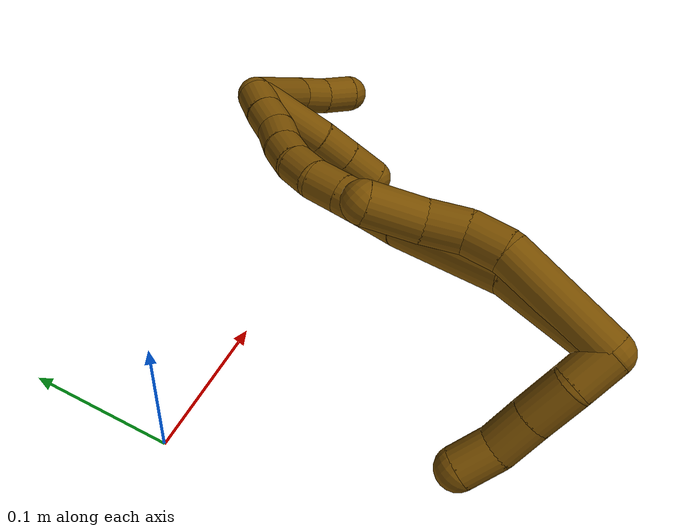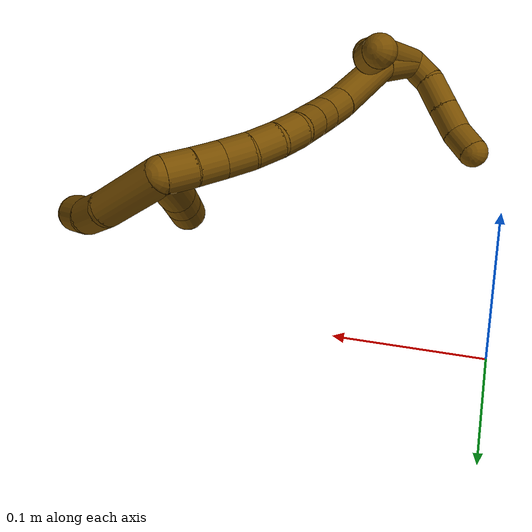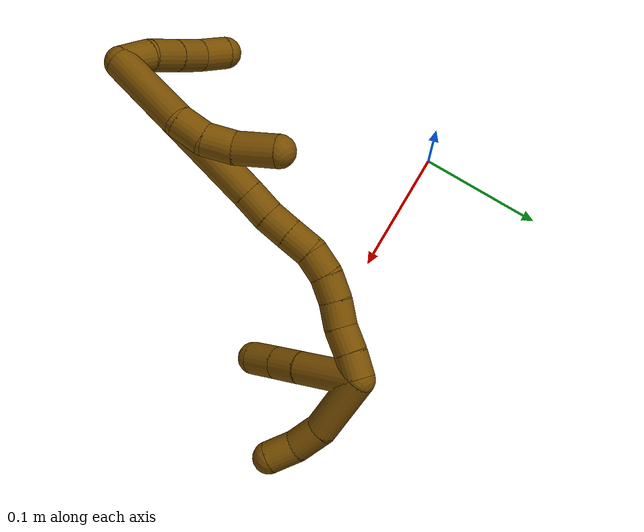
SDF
<sdf version="1.7">
 <world name="default">
  <model name="12">
   <static>0</static>
   <link name="12">
    <collision name="collision-cylinder-e_1_2_8">
     <pose>0.000129 -0.000382 0.035132 0.010885 0.003674 2e-05</pose>
     <geometry><cylinder><radius>0.0125</radius><length>0.070269</length></cylinder></geometry>
     <surface>
      <friction><ode><mu>1.16</mu><mu2>1.16</mu2><slip1>0</slip1><slip2>0</slip2></ode></friction>
      <contact><ode><kp>1e+06</kp><kd>1</kd><max_vel>0</max_vel><min_depth>0.001</min_depth></ode></contact>
     </surface>
    </collision>
    <visual name="visual-cylinder-e_1_2_8">
     <pose>0.000129 -0.000382 0.035132 0.010885 0.003674 2e-05</pose>
     <geometry><cylinder><radius>0.0125</radius><length>0.070269</length></cylinder></geometry>
     <material><ambient>0.466667 0.301961 0 1</ambient></material>
    </visual>
    <collision name="collision-cylinder-e_2_8_9">
     <pose>-0.002492 0.001087 0.081201 -0.167715 -0.243013 0.020527</pose>
     <geometry><cylinder><radius>0.0125</radius><length>0.022857</length></cylinder></geometry>
     <surface>
      <friction><ode><mu>1.16</mu><mu2>1.16</mu2><slip1>0</slip1><slip2>0</slip2></ode></friction>
      <contact><ode><kp>1e+06</kp><kd>1</kd><max_vel>0</max_vel><min_depth>0.001</min_depth></ode></contact>
     </surface>
    </collision>
    <visual name="visual-cylinder-e_2_8_9">
     <pose>-0.002492 0.001087 0.081201 -0.167715 -0.243013 0.020527</pose>
     <geometry><cylinder><radius>0.0125</radius><length>0.022857</length></cylinder></geometry>
     <material><ambient>0.466667 0.301961 0 1</ambient></material>
    </visual>
    <collision name="collision-cylinder-e_3_9_10">
     <pose>-0.011541 0.003537 0.10217 -0.059594 -0.559878 0.017137</pose>
     <geometry><cylinder><radius>0.0125</radius><length>0.023722</length></cylinder></geometry>
     <surface>
      <friction><ode><mu>1.16</mu><mu2>1.16</mu2><slip1>0</slip1><slip2>0</slip2></ode></friction>
      <contact><ode><kp>1e+06</kp><kd>1</kd><max_vel>0</max_vel><min_depth>0.001</min_depth></ode></contact>
     </surface>
    </collision>
    <visual name="visual-cylinder-e_3_9_10">
     <pose>-0.011541 0.003537 0.10217 -0.059594 -0.559878 0.017137</pose>
     <geometry><cylinder><radius>0.0125</radius><length>0.023722</length></cylinder></geometry>
     <material><ambient>0.466667 0.301961 0 1</ambient></material>
    </visual>
    <collision name="collision-cylinder-e_4_10_6">
     <pose>-0.027153 0.000492 0.125422 0.268978 -0.596596 -0.083158</pose>
     <geometry><cylinder><radius>0.0125</radius><length>0.033152</length></cylinder></geometry>
     <surface>
      <friction><ode><mu>1.16</mu><mu2>1.16</mu2><slip1>0</slip1><slip2>0</slip2></ode></friction>
      <contact><ode><kp>1e+06</kp><kd>1</kd><max_vel>0</max_vel><min_depth>0.001</min_depth></ode></contact>
     </surface>
    </collision>
    <visual name="visual-cylinder-e_4_10_6">
     <pose>-0.027153 0.000492 0.125422 0.268978 -0.596596 -0.083158</pose>
     <geometry><cylinder><radius>0.0125</radius><length>0.033152</length></cylinder></geometry>
     <material><ambient>0.466667 0.301961 0 1</ambient></material>
    </visual>
    <collision name="collision-cylinder-e_1_2_11">
     <pose>-0.011382 0.0047 0.000824 -1.39719 -1.17379 1.01882</pose>
     <geometry><cylinder><radius>0.0125</radius><length>0.024684</length></cylinder></geometry>
     <surface>
      <friction><ode><mu>1.16</mu><mu2>1.16</mu2><slip1>0</slip1><slip2>0</slip2></ode></friction>
      <contact><ode><kp>1e+06</kp><kd>1</kd><max_vel>0</max_vel><min_depth>0.001</min_depth></ode></contact>
     </surface>
    </collision>
    <visual name="visual-cylinder-e_1_2_11">
     <pose>-0.011382 0.0047 0.000824 -1.39719 -1.17379 1.01882</pose>
     <geometry><cylinder><radius>0.0125</radius><length>0.024684</length></cylinder></geometry>
     <material><ambient>0.466667 0.301961 0 1</ambient></material>
    </visual>
    <collision name="collision-cylinder-e_2_11_12">
     <pose>-0.033394 0.017668 0.002661 -1.44899 -0.906159 0.813709</pose>
     <geometry><cylinder><radius>0.0125</radius><length>0.027009</length></cylinder></geometry>
     <surface>
      <friction><ode><mu>1.16</mu><mu2>1.16</mu2><slip1>0</slip1><slip2>0</slip2></ode></friction>
      <contact><ode><kp>1e+06</kp><kd>1</kd><max_vel>0</max_vel><min_depth>0.001</min_depth></ode></contact>
     </surface>
    </collision>
    <visual name="visual-cylinder-e_2_11_12">
     <pose>-0.033394 0.017668 0.002661 -1.44899 -0.906159 0.813709</pose>
     <geometry><cylinder><radius>0.0125</radius><length>0.027009</length></cylinder></geometry>
     <material><ambient>0.466667 0.301961 0 1</ambient></material>
    </visual>
    <collision name="collision-cylinder-e_3_12_13">
     <pose>-0.054017 0.033603 0.004366 -1.48067 -0.914422 0.844916</pose>
     <geometry><cylinder><radius>0.0125</radius><length>0.02523</length></cylinder></geometry>
     <surface>
      <friction><ode><mu>1.16</mu><mu2>1.16</mu2><slip1>0</slip1><slip2>0</slip2></ode></friction>
      <contact><ode><kp>1e+06</kp><kd>1</kd><max_vel>0</max_vel><min_depth>0.001</min_depth></ode></contact>
     </surface>
    </collision>
    <visual name="visual-cylinder-e_3_12_13">
     <pose>-0.054017 0.033603 0.004366 -1.48067 -0.914422 0.844916</pose>
     <geometry><cylinder><radius>0.0125</radius><length>0.02523</length></cylinder></geometry>
     <material><ambient>0.466667 0.301961 0 1</ambient></material>
    </visual>
    <collision name="collision-cylinder-e_4_13_5">
     <pose>-0.074297 0.045629 0.007946 -0.985714 -1.1005 0.636523</pose>
     <geometry><cylinder><radius>0.0125</radius><length>0.023078</length></cylinder></geometry>
     <surface>
      <friction><ode><mu>1.16</mu><mu2>1.16</mu2><slip1>0</slip1><slip2>0</slip2></ode></friction>
      <contact><ode><kp>1e+06</kp><kd>1</kd><max_vel>0</max_vel><min_depth>0.001</min_depth></ode></contact>
     </surface>
    </collision>
    <visual name="visual-cylinder-e_4_13_5">
     <pose>-0.074297 0.045629 0.007946 -0.985714 -1.1005 0.636523</pose>
     <geometry><cylinder><radius>0.0125</radius><length>0.023078</length></cylinder></geometry>
     <material><ambient>0.466667 0.301961 0 1</ambient></material>
    </visual>
    <collision name="collision-cylinder-e_1_2_14">
     <pose>-0.001697 0.005284 0.031787 -0.16473 -0.052628 0.004346</pose>
     <geometry><cylinder><radius>0.0125</radius><length>0.064535</length></cylinder></geometry>
     <surface>
      <friction><ode><mu>1.16</mu><mu2>1.16</mu2><slip1>0</slip1><slip2>0</slip2></ode></friction>
      <contact><ode><kp>1e+06</kp><kd>1</kd><max_vel>0</max_vel><min_depth>0.001</min_depth></ode></contact>
     </surface>
    </collision>
    <visual name="visual-cylinder-e_1_2_14">
     <pose>-0.001697 0.005284 0.031787 -0.16473 -0.052628 0.004346</pose>
     <geometry><cylinder><radius>0.0125</radius><length>0.064535</length></cylinder></geometry>
     <material><ambient>0.466667 0.301961 0 1</ambient></material>
    </visual>
    <collision name="collision-cylinder-e_2_14_15">
     <pose>-0.008644 0.026595 0.095032 -0.471176 -0.147599 0.035491</pose>
     <geometry><cylinder><radius>0.0125</radius><length>0.071388</length></cylinder></geometry>
     <surface>
      <friction><ode><mu>1.16</mu><mu2>1.16</mu2><slip1>0</slip1><slip2>0</slip2></ode></friction>
      <contact><ode><kp>1e+06</kp><kd>1</kd><max_vel>0</max_vel><min_depth>0.001</min_depth></ode></contact>
     </surface>
    </collision>
    <visual name="visual-cylinder-e_2_14_15">
     <pose>-0.008644 0.026595 0.095032 -0.471176 -0.147599 0.035491</pose>
     <geometry><cylinder><radius>0.0125</radius><length>0.071388</length></cylinder></geometry>
     <material><ambient>0.466667 0.301961 0 1</ambient></material>
    </visual>
    <collision name="collision-cylinder-e_3_15_16">
     <pose>-0.014921 0.047146 0.136962 -0.407868 -0.089842 0.018592</pose>
     <geometry><cylinder><radius>0.0125</radius><length>0.022906</length></cylinder></geometry>
     <surface>
      <friction><ode><mu>1.16</mu><mu2>1.16</mu2><slip1>0</slip1><slip2>0</slip2></ode></friction>
      <contact><ode><kp>1e+06</kp><kd>1</kd><max_vel>0</max_vel><min_depth>0.001</min_depth></ode></contact>
     </surface>
    </collision>
    <visual name="visual-cylinder-e_3_15_16">
     <pose>-0.014921 0.047146 0.136962 -0.407868 -0.089842 0.018592</pose>
     <geometry><cylinder><radius>0.0125</radius><length>0.022906</length></cylinder></geometry>
     <material><ambient>0.466667 0.301961 0 1</ambient></material>
    </visual>
    <collision name="collision-cylinder-e_4_16_17">
     <pose>-0.017766 0.054288 0.157036 -0.266155 -0.180608 0.024242</pose>
     <geometry><cylinder><radius>0.0125</radius><length>0.020236</length></cylinder></geometry>
     <surface>
      <friction><ode><mu>1.16</mu><mu2>1.16</mu2><slip1>0</slip1><slip2>0</slip2></ode></friction>
      <contact><ode><kp>1e+06</kp><kd>1</kd><max_vel>0</max_vel><min_depth>0.001</min_depth></ode></contact>
     </surface>
    </collision>
    <visual name="visual-cylinder-e_4_16_17">
     <pose>-0.017766 0.054288 0.157036 -0.266155 -0.180608 0.024242</pose>
     <geometry><cylinder><radius>0.0125</radius><length>0.020236</length></cylinder></geometry>
     <material><ambient>0.466667 0.301961 0 1</ambient></material>
    </visual>
    <collision name="collision-cylinder-e_5_17_18">
     <pose>-0.021592 0.059512 0.17656 -0.256795 -0.193324 0.025036</pose>
     <geometry><cylinder><radius>0.0125</radius><length>0.020905</length></cylinder></geometry>
     <surface>
      <friction><ode><mu>1.16</mu><mu2>1.16</mu2><slip1>0</slip1><slip2>0</slip2></ode></friction>
      <contact><ode><kp>1e+06</kp><kd>1</kd><max_vel>0</max_vel><min_depth>0.001</min_depth></ode></contact>
     </surface>
    </collision>
    <visual name="visual-cylinder-e_5_17_18">
     <pose>-0.021592 0.059512 0.17656 -0.256795 -0.193324 0.025036</pose>
     <geometry><cylinder><radius>0.0125</radius><length>0.020905</length></cylinder></geometry>
     <material><ambient>0.466667 0.301961 0 1</ambient></material>
    </visual>
    <collision name="collision-cylinder-e_6_18_19">
     <pose>-0.02301 0.066288 0.19556 -0.430674 0.058956 -0.012899</pose>
     <geometry><cylinder><radius>0.0125</radius><length>0.020017</length></cylinder></geometry>
     <surface>
      <friction><ode><mu>1.16</mu><mu2>1.16</mu2><slip1>0</slip1><slip2>0</slip2></ode></friction>
      <contact><ode><kp>1e+06</kp><kd>1</kd><max_vel>0</max_vel><min_depth>0.001</min_depth></ode></contact>
     </surface>
    </collision>
    <visual name="visual-cylinder-e_6_18_19">
     <pose>-0.02301 0.066288 0.19556 -0.430674 0.058956 -0.012899</pose>
     <geometry><cylinder><radius>0.0125</radius><length>0.020017</length></cylinder></geometry>
     <material><ambient>0.466667 0.301961 0 1</ambient></material>
    </visual>
    <collision name="collision-cylinder-e_7_19_20">
     <pose>-0.019728 0.075376 0.212924 -0.535577 0.272474 -0.075192</pose>
     <geometry><cylinder><radius>0.0125</radius><length>0.020006</length></cylinder></geometry>
     <surface>
      <friction><ode><mu>1.16</mu><mu2>1.16</mu2><slip1>0</slip1><slip2>0</slip2></ode></friction>
      <contact><ode><kp>1e+06</kp><kd>1</kd><max_vel>0</max_vel><min_depth>0.001</min_depth></ode></contact>
     </surface>
    </collision>
    <visual name="visual-cylinder-e_7_19_20">
     <pose>-0.019728 0.075376 0.212924 -0.535577 0.272474 -0.075192</pose>
     <geometry><cylinder><radius>0.0125</radius><length>0.020006</length></cylinder></geometry>
     <material><ambient>0.466667 0.301961 0 1</ambient></material>
    </visual>
    <collision name="collision-cylinder-e_8_20_21">
     <pose>-0.012858 0.085117 0.228911 -0.559617 0.430884 -0.125599</pose>
     <geometry><cylinder><radius>0.0125</radius><length>0.020006</length></cylinder></geometry>
     <surface>
      <friction><ode><mu>1.16</mu><mu2>1.16</mu2><slip1>0</slip1><slip2>0</slip2></ode></friction>
      <contact><ode><kp>1e+06</kp><kd>1</kd><max_vel>0</max_vel><min_depth>0.001</min_depth></ode></contact>
     </surface>
    </collision>
    <visual name="visual-cylinder-e_8_20_21">
     <pose>-0.012858 0.085117 0.228911 -0.559617 0.430884 -0.125599</pose>
     <geometry><cylinder><radius>0.0125</radius><length>0.020006</length></cylinder></geometry>
     <material><ambient>0.466667 0.301961 0 1</ambient></material>
    </visual>
    <collision name="collision-cylinder-e_9_21_22">
     <pose>-0.00585 0.093717 0.245431 -0.404538 0.286963 -0.059238</pose>
     <geometry><cylinder><radius>0.0125</radius><length>0.020001</length></cylinder></geometry>
     <surface>
      <friction><ode><mu>1.16</mu><mu2>1.16</mu2><slip1>0</slip1><slip2>0</slip2></ode></friction>
      <contact><ode><kp>1e+06</kp><kd>1</kd><max_vel>0</max_vel><min_depth>0.001</min_depth></ode></contact>
     </surface>
    </collision>
    <visual name="visual-cylinder-e_9_21_22">
     <pose>-0.00585 0.093717 0.245431 -0.404538 0.286963 -0.059238</pose>
     <geometry><cylinder><radius>0.0125</radius><length>0.020001</length></cylinder></geometry>
     <material><ambient>0.466667 0.301961 0 1</ambient></material>
    </visual>
    <collision name="collision-cylinder-e_10_22_1">
     <pose>0.000582 0.101368 0.262734 -0.428401 0.368397 -0.081015</pose>
     <geometry><cylinder><radius>0.0125</radius><length>0.020001</length></cylinder></geometry>
     <surface>
      <friction><ode><mu>1.16</mu><mu2>1.16</mu2><slip1>0</slip1><slip2>0</slip2></ode></friction>
      <contact><ode><kp>1e+06</kp><kd>1</kd><max_vel>0</max_vel><min_depth>0.001</min_depth></ode></contact>
     </surface>
    </collision>
    <visual name="visual-cylinder-e_10_22_1">
     <pose>0.000582 0.101368 0.262734 -0.428401 0.368397 -0.081015</pose>
     <geometry><cylinder><radius>0.0125</radius><length>0.020001</length></cylinder></geometry>
     <material><ambient>0.466667 0.301961 0 1</ambient></material>
    </visual>
    <collision name="collision-cylinder-e_1_1_23">
     <pose>0.022064 0.124395 0.270555 -1.60551 0.750783 -0.774771</pose>
     <geometry><cylinder><radius>0.0125</radius><length>0.05242</length></cylinder></geometry>
     <surface>
      <friction><ode><mu>1.16</mu><mu2>1.16</mu2><slip1>0</slip1><slip2>0</slip2></ode></friction>
      <contact><ode><kp>1e+06</kp><kd>1</kd><max_vel>0</max_vel><min_depth>0.001</min_depth></ode></contact>
     </surface>
    </collision>
    <visual name="visual-cylinder-e_1_1_23">
     <pose>0.022064 0.124395 0.270555 -1.60551 0.750783 -0.774771</pose>
     <geometry><cylinder><radius>0.0125</radius><length>0.05242</length></cylinder></geometry>
     <material><ambient>0.466667 0.301961 0 1</ambient></material>
    </visual>
    <collision name="collision-cylinder-e_2_23_24">
     <pose>0.049485 0.150746 0.266671 -1.99137 0.880029 -1.25634</pose>
     <geometry><cylinder><radius>0.0125</radius><length>0.024755</length></cylinder></geometry>
     <surface>
      <friction><ode><mu>1.16</mu><mu2>1.16</mu2><slip1>0</slip1><slip2>0</slip2></ode></friction>
      <contact><ode><kp>1e+06</kp><kd>1</kd><max_vel>0</max_vel><min_depth>0.001</min_depth></ode></contact>
     </surface>
    </collision>
    <visual name="visual-cylinder-e_2_23_24">
     <pose>0.049485 0.150746 0.266671 -1.99137 0.880029 -1.25634</pose>
     <geometry><cylinder><radius>0.0125</radius><length>0.024755</length></cylinder></geometry>
     <material><ambient>0.466667 0.301961 0 1</ambient></material>
    </visual>
    <collision name="collision-cylinder-e_3_24_4">
     <pose>0.068848 0.161739 0.25905 -2.43009 1.03661 -1.98673</pose>
     <geometry><cylinder><radius>0.0125</radius><length>0.022825</length></cylinder></geometry>
     <surface>
      <friction><ode><mu>1.16</mu><mu2>1.16</mu2><slip1>0</slip1><slip2>0</slip2></ode></friction>
      <contact><ode><kp>1e+06</kp><kd>1</kd><max_vel>0</max_vel><min_depth>0.001</min_depth></ode></contact>
     </surface>
    </collision>
    <visual name="visual-cylinder-e_3_24_4">
     <pose>0.068848 0.161739 0.25905 -2.43009 1.03661 -1.98673</pose>
     <geometry><cylinder><radius>0.0125</radius><length>0.022825</length></cylinder></geometry>
     <material><ambient>0.466667 0.301961 0 1</ambient></material>
    </visual>
    <collision name="collision-cylinder-e_1_1_25">
     <pose>0.013746 0.11656 0.24956 -2.66016 0.372998 -1.31069</pose>
     <geometry><cylinder><radius>0.0125</radius><length>0.052486</length></cylinder></geometry>
     <surface>
      <friction><ode><mu>1.16</mu><mu2>1.16</mu2><slip1>0</slip1><slip2>0</slip2></ode></friction>
      <contact><ode><kp>1e+06</kp><kd>1</kd><max_vel>0</max_vel><min_depth>0.001</min_depth></ode></contact>
     </surface>
    </collision>
    <visual name="visual-cylinder-e_1_1_25">
     <pose>0.013746 0.11656 0.24956 -2.66016 0.372998 -1.31069</pose>
     <geometry><cylinder><radius>0.0125</radius><length>0.052486</length></cylinder></geometry>
     <material><ambient>0.466667 0.301961 0 1</ambient></material>
    </visual>
    <collision name="collision-cylinder-e_2_25_26">
     <pose>0.027035 0.133381 0.218556 -2.60919 0.330866 -1.09884</pose>
     <geometry><cylinder><radius>0.0125</radius><length>0.022933</length></cylinder></geometry>
     <surface>
      <friction><ode><mu>1.16</mu><mu2>1.16</mu2><slip1>0</slip1><slip2>0</slip2></ode></friction>
      <contact><ode><kp>1e+06</kp><kd>1</kd><max_vel>0</max_vel><min_depth>0.001</min_depth></ode></contact>
     </surface>
    </collision>
    <visual name="visual-cylinder-e_2_25_26">
     <pose>0.027035 0.133381 0.218556 -2.60919 0.330866 -1.09884</pose>
     <geometry><cylinder><radius>0.0125</radius><length>0.022933</length></cylinder></geometry>
     <material><ambient>0.466667 0.301961 0 1</ambient></material>
    </visual>
    <collision name="collision-cylinder-e_3_26_3">
     <pose>0.034737 0.144889 0.199253 -2.59913 0.329582 -1.07792</pose>
     <geometry><cylinder><radius>0.0125</radius><length>0.024581</length></cylinder></geometry>
     <surface>
      <friction><ode><mu>1.16</mu><mu2>1.16</mu2><slip1>0</slip1><slip2>0</slip2></ode></friction>
      <contact><ode><kp>1e+06</kp><kd>1</kd><max_vel>0</max_vel><min_depth>0.001</min_depth></ode></contact>
     </surface>
    </collision>
    <visual name="visual-cylinder-e_3_26_3">
     <pose>0.034737 0.144889 0.199253 -2.59913 0.329582 -1.07792</pose>
     <geometry><cylinder><radius>0.0125</radius><length>0.024581</length></cylinder></geometry>
     <material><ambient>0.466667 0.301961 0 1</ambient></material>
    </visual>
    <collision name="collision-sphere-3">
     <pose>0.038715 0.150892 0.189293 0 -0 0</pose>
     <geometry><sphere><radius>0.0125</radius></sphere></geometry>
     <surface>
      <friction><ode><mu>1.16</mu><mu2>1.16</mu2><slip1>0</slip1><slip2>0</slip2></ode></friction>
      <contact><ode><kp>1e+06</kp><kd>1</kd><max_vel>0</max_vel><min_depth>0.001</min_depth></ode></contact>
     </surface>
    </collision>
    <visual name="visual-sphere-3">
     <pose>0.038715 0.150892 0.189293 0 -0 0</pose>
     <geometry><sphere><radius>0.0125</radius></sphere></geometry>
     <material><ambient>0.466667 0.301961 0 1</ambient></material>
    </visual>
    <collision name="collision-sphere-26">
     <pose>0.03076 0.138885 0.209212 0 -0 0</pose>
     <geometry><sphere><radius>0.0125</radius></sphere></geometry>
     <surface>
      <friction><ode><mu>1.16</mu><mu2>1.16</mu2><slip1>0</slip1><slip2>0</slip2></ode></friction>
      <contact><ode><kp>1e+06</kp><kd>1</kd><max_vel>0</max_vel><min_depth>0.001</min_depth></ode></contact>
     </surface>
    </collision>
    <visual name="visual-sphere-26">
     <pose>0.03076 0.138885 0.209212 0 -0 0</pose>
     <geometry><sphere><radius>0.0125</radius></sphere></geometry>
     <material><ambient>0.466667 0.301961 0 1</ambient></material>
    </visual>
    <collision name="collision-sphere-25">
     <pose>0.02331 0.127876 0.2279 0 -0 0</pose>
     <geometry><sphere><radius>0.0125</radius></sphere></geometry>
     <surface>
      <friction><ode><mu>1.16</mu><mu2>1.16</mu2><slip1>0</slip1><slip2>0</slip2></ode></friction>
      <contact><ode><kp>1e+06</kp><kd>1</kd><max_vel>0</max_vel><min_depth>0.001</min_depth></ode></contact>
     </surface>
    </collision>
    <visual name="visual-sphere-25">
     <pose>0.02331 0.127876 0.2279 0 -0 0</pose>
     <geometry><sphere><radius>0.0125</radius></sphere></geometry>
     <material><ambient>0.466667 0.301961 0 1</ambient></material>
    </visual>
    <collision name="collision-sphere-4">
     <pose>0.07867 0.165533 0.254649 0 -0 0</pose>
     <geometry><sphere><radius>0.0125</radius></sphere></geometry>
     <surface>
      <friction><ode><mu>1.16</mu><mu2>1.16</mu2><slip1>0</slip1><slip2>0</slip2></ode></friction>
      <contact><ode><kp>1e+06</kp><kd>1</kd><max_vel>0</max_vel><min_depth>0.001</min_depth></ode></contact>
     </surface>
    </collision>
    <visual name="visual-sphere-4">
     <pose>0.07867 0.165533 0.254649 0 -0 0</pose>
     <geometry><sphere><radius>0.0125</radius></sphere></geometry>
     <material><ambient>0.466667 0.301961 0 1</ambient></material>
    </visual>
    <collision name="collision-sphere-24">
     <pose>0.059025 0.157945 0.263451 0 -0 0</pose>
     <geometry><sphere><radius>0.0125</radius></sphere></geometry>
     <surface>
      <friction><ode><mu>1.16</mu><mu2>1.16</mu2><slip1>0</slip1><slip2>0</slip2></ode></friction>
      <contact><ode><kp>1e+06</kp><kd>1</kd><max_vel>0</max_vel><min_depth>0.001</min_depth></ode></contact>
     </surface>
    </collision>
    <visual name="visual-sphere-24">
     <pose>0.059025 0.157945 0.263451 0 -0 0</pose>
     <geometry><sphere><radius>0.0125</radius></sphere></geometry>
     <material><ambient>0.466667 0.301961 0 1</ambient></material>
    </visual>
    <collision name="collision-sphere-23">
     <pose>0.039945 0.143547 0.26989 0 -0 0</pose>
     <geometry><sphere><radius>0.0125</radius></sphere></geometry>
     <surface>
      <friction><ode><mu>1.16</mu><mu2>1.16</mu2><slip1>0</slip1><slip2>0</slip2></ode></friction>
      <contact><ode><kp>1e+06</kp><kd>1</kd><max_vel>0</max_vel><min_depth>0.001</min_depth></ode></contact>
     </surface>
    </collision>
    <visual name="visual-sphere-23">
     <pose>0.039945 0.143547 0.26989 0 -0 0</pose>
     <geometry><sphere><radius>0.0125</radius></sphere></geometry>
     <material><ambient>0.466667 0.301961 0 1</ambient></material>
    </visual>
    <collision name="collision-sphere-1">
     <pose>0.004183 0.105243 0.271221 0 -0 0</pose>
     <geometry><sphere><radius>0.0125</radius></sphere></geometry>
     <surface>
      <friction><ode><mu>1.16</mu><mu2>1.16</mu2><slip1>0</slip1><slip2>0</slip2></ode></friction>
      <contact><ode><kp>1e+06</kp><kd>1</kd><max_vel>0</max_vel><min_depth>0.001</min_depth></ode></contact>
     </surface>
    </collision>
    <visual name="visual-sphere-1">
     <pose>0.004183 0.105243 0.271221 0 -0 0</pose>
     <geometry><sphere><radius>0.0125</radius></sphere></geometry>
     <material><ambient>0.466667 0.301961 0 1</ambient></material>
    </visual>
    <collision name="collision-sphere-22">
     <pose>-0.003019 0.097492 0.254248 0 -0 0</pose>
     <geometry><sphere><radius>0.0125</radius></sphere></geometry>
     <surface>
      <friction><ode><mu>1.16</mu><mu2>1.16</mu2><slip1>0</slip1><slip2>0</slip2></ode></friction>
      <contact><ode><kp>1e+06</kp><kd>1</kd><max_vel>0</max_vel><min_depth>0.001</min_depth></ode></contact>
     </surface>
    </collision>
    <visual name="visual-sphere-22">
     <pose>-0.003019 0.097492 0.254248 0 -0 0</pose>
     <geometry><sphere><radius>0.0125</radius></sphere></geometry>
     <material><ambient>0.466667 0.301961 0 1</ambient></material>
    </visual>
    <collision name="collision-sphere-21">
     <pose>-0.00868 0.089942 0.236614 0 -0 0</pose>
     <geometry><sphere><radius>0.0125</radius></sphere></geometry>
     <surface>
      <friction><ode><mu>1.16</mu><mu2>1.16</mu2><slip1>0</slip1><slip2>0</slip2></ode></friction>
      <contact><ode><kp>1e+06</kp><kd>1</kd><max_vel>0</max_vel><min_depth>0.001</min_depth></ode></contact>
     </surface>
    </collision>
    <visual name="visual-sphere-21">
     <pose>-0.00868 0.089942 0.236614 0 -0 0</pose>
     <geometry><sphere><radius>0.0125</radius></sphere></geometry>
     <material><ambient>0.466667 0.301961 0 1</ambient></material>
    </visual>
    <collision name="collision-sphere-11">
     <pose>-0.022764 0.009401 0.001649 0 -0 0</pose>
     <geometry><sphere><radius>0.0125</radius></sphere></geometry>
     <surface>
      <friction><ode><mu>1.16</mu><mu2>1.16</mu2><slip1>0</slip1><slip2>0</slip2></ode></friction>
      <contact><ode><kp>1e+06</kp><kd>1</kd><max_vel>0</max_vel><min_depth>0.001</min_depth></ode></contact>
     </surface>
    </collision>
    <visual name="visual-sphere-11">
     <pose>-0.022764 0.009401 0.001649 0 -0 0</pose>
     <geometry><sphere><radius>0.0125</radius></sphere></geometry>
     <material><ambient>0.466667 0.301961 0 1</ambient></material>
    </visual>
    <collision name="collision-sphere-6">
     <pose>-0.036466 -0.003152 0.138642 0 -0 0</pose>
     <geometry><sphere><radius>0.0125</radius></sphere></geometry>
     <surface>
      <friction><ode><mu>1.16</mu><mu2>1.16</mu2><slip1>0</slip1><slip2>0</slip2></ode></friction>
      <contact><ode><kp>1e+06</kp><kd>1</kd><max_vel>0</max_vel><min_depth>0.001</min_depth></ode></contact>
     </surface>
    </collision>
    <visual name="visual-sphere-6">
     <pose>-0.036466 -0.003152 0.138642 0 -0 0</pose>
     <geometry><sphere><radius>0.0125</radius></sphere></geometry>
     <material><ambient>0.466667 0.301961 0 1</ambient></material>
    </visual>
    <collision name="collision-sphere-10">
     <pose>-0.01784 0.004136 0.112203 0 -0 0</pose>
     <geometry><sphere><radius>0.0125</radius></sphere></geometry>
     <surface>
      <friction><ode><mu>1.16</mu><mu2>1.16</mu2><slip1>0</slip1><slip2>0</slip2></ode></friction>
      <contact><ode><kp>1e+06</kp><kd>1</kd><max_vel>0</max_vel><min_depth>0.001</min_depth></ode></contact>
     </surface>
    </collision>
    <visual name="visual-sphere-10">
     <pose>-0.01784 0.004136 0.112203 0 -0 0</pose>
     <geometry><sphere><radius>0.0125</radius></sphere></geometry>
     <material><ambient>0.466667 0.301961 0 1</ambient></material>
    </visual>
    <collision name="collision-sphere-9">
     <pose>-0.005242 0.002938 0.092138 0 -0 0</pose>
     <geometry><sphere><radius>0.0125</radius></sphere></geometry>
     <surface>
      <friction><ode><mu>1.16</mu><mu2>1.16</mu2><slip1>0</slip1><slip2>0</slip2></ode></friction>
      <contact><ode><kp>1e+06</kp><kd>1</kd><max_vel>0</max_vel><min_depth>0.001</min_depth></ode></contact>
     </surface>
    </collision>
    <visual name="visual-sphere-9">
     <pose>-0.005242 0.002938 0.092138 0 -0 0</pose>
     <geometry><sphere><radius>0.0125</radius></sphere></geometry>
     <material><ambient>0.466667 0.301961 0 1</ambient></material>
    </visual>
    <collision name="collision-sphere-2">
     <geometry><sphere><radius>0.0125</radius></sphere></geometry>
     <surface>
      <friction><ode><mu>1.16</mu><mu2>1.16</mu2><slip1>0</slip1><slip2>0</slip2></ode></friction>
      <contact><ode><kp>1e+06</kp><kd>1</kd><max_vel>0</max_vel><min_depth>0.001</min_depth></ode></contact>
     </surface>
    </collision>
    <visual name="visual-sphere-2">
     <geometry><sphere><radius>0.0125</radius></sphere></geometry>
     <material><ambient>0.466667 0.301961 0 1</ambient></material>
    </visual>
    <collision name="collision-sphere-19">
     <pose>-0.02242 0.070459 0.204639 0 -0 0</pose>
     <geometry><sphere><radius>0.0125</radius></sphere></geometry>
     <surface>
      <friction><ode><mu>1.16</mu><mu2>1.16</mu2><slip1>0</slip1><slip2>0</slip2></ode></friction>
      <contact><ode><kp>1e+06</kp><kd>1</kd><max_vel>0</max_vel><min_depth>0.001</min_depth></ode></contact>
     </surface>
    </collision>
    <visual name="visual-sphere-19">
     <pose>-0.02242 0.070459 0.204639 0 -0 0</pose>
     <geometry><sphere><radius>0.0125</radius></sphere></geometry>
     <material><ambient>0.466667 0.301961 0 1</ambient></material>
    </visual>
    <collision name="collision-sphere-8">
     <pose>0.000258 -0.000765 0.070264 0 -0 0</pose>
     <geometry><sphere><radius>0.0125</radius></sphere></geometry>
     <surface>
      <friction><ode><mu>1.16</mu><mu2>1.16</mu2><slip1>0</slip1><slip2>0</slip2></ode></friction>
      <contact><ode><kp>1e+06</kp><kd>1</kd><max_vel>0</max_vel><min_depth>0.001</min_depth></ode></contact>
     </surface>
    </collision>
    <visual name="visual-sphere-8">
     <pose>0.000258 -0.000765 0.070264 0 -0 0</pose>
     <geometry><sphere><radius>0.0125</radius></sphere></geometry>
     <material><ambient>0.466667 0.301961 0 1</ambient></material>
    </visual>
    <collision name="collision-sphere-12">
     <pose>-0.044024 0.025936 0.003673 0 -0 0</pose>
     <geometry><sphere><radius>0.0125</radius></sphere></geometry>
     <surface>
      <friction><ode><mu>1.16</mu><mu2>1.16</mu2><slip1>0</slip1><slip2>0</slip2></ode></friction>
      <contact><ode><kp>1e+06</kp><kd>1</kd><max_vel>0</max_vel><min_depth>0.001</min_depth></ode></contact>
     </surface>
    </collision>
    <visual name="visual-sphere-12">
     <pose>-0.044024 0.025936 0.003673 0 -0 0</pose>
     <geometry><sphere><radius>0.0125</radius></sphere></geometry>
     <material><ambient>0.466667 0.301961 0 1</ambient></material>
    </visual>
    <collision name="collision-sphere-13">
     <pose>-0.064011 0.04127 0.005058 0 -0 0</pose>
     <geometry><sphere><radius>0.0125</radius></sphere></geometry>
     <surface>
      <friction><ode><mu>1.16</mu><mu2>1.16</mu2><slip1>0</slip1><slip2>0</slip2></ode></friction>
      <contact><ode><kp>1e+06</kp><kd>1</kd><max_vel>0</max_vel><min_depth>0.001</min_depth></ode></contact>
     </surface>
    </collision>
    <visual name="visual-sphere-13">
     <pose>-0.064011 0.04127 0.005058 0 -0 0</pose>
     <geometry><sphere><radius>0.0125</radius></sphere></geometry>
     <material><ambient>0.466667 0.301961 0 1</ambient></material>
    </visual>
    <collision name="collision-sphere-5">
     <pose>-0.084583 0.049988 0.010834 0 -0 0</pose>
     <geometry><sphere><radius>0.0125</radius></sphere></geometry>
     <surface>
      <friction><ode><mu>1.16</mu><mu2>1.16</mu2><slip1>0</slip1><slip2>0</slip2></ode></friction>
      <contact><ode><kp>1e+06</kp><kd>1</kd><max_vel>0</max_vel><min_depth>0.001</min_depth></ode></contact>
     </surface>
    </collision>
    <visual name="visual-sphere-5">
     <pose>-0.084583 0.049988 0.010834 0 -0 0</pose>
     <geometry><sphere><radius>0.0125</radius></sphere></geometry>
     <material><ambient>0.466667 0.301961 0 1</ambient></material>
    </visual>
    <collision name="collision-sphere-14">
     <pose>-0.003395 0.010568 0.063573 0 -0 0</pose>
     <geometry><sphere><radius>0.0125</radius></sphere></geometry>
     <surface>
      <friction><ode><mu>1.16</mu><mu2>1.16</mu2><slip1>0</slip1><slip2>0</slip2></ode></friction>
      <contact><ode><kp>1e+06</kp><kd>1</kd><max_vel>0</max_vel><min_depth>0.001</min_depth></ode></contact>
     </surface>
    </collision>
    <visual name="visual-sphere-14">
     <pose>-0.003395 0.010568 0.063573 0 -0 0</pose>
     <geometry><sphere><radius>0.0125</radius></sphere></geometry>
     <material><ambient>0.466667 0.301961 0 1</ambient></material>
    </visual>
    <collision name="collision-sphere-15">
     <pose>-0.013893 0.042621 0.126491 0 -0 0</pose>
     <geometry><sphere><radius>0.0125</radius></sphere></geometry>
     <surface>
      <friction><ode><mu>1.16</mu><mu2>1.16</mu2><slip1>0</slip1><slip2>0</slip2></ode></friction>
      <contact><ode><kp>1e+06</kp><kd>1</kd><max_vel>0</max_vel><min_depth>0.001</min_depth></ode></contact>
     </surface>
    </collision>
    <visual name="visual-sphere-15">
     <pose>-0.013893 0.042621 0.126491 0 -0 0</pose>
     <geometry><sphere><radius>0.0125</radius></sphere></geometry>
     <material><ambient>0.466667 0.301961 0 1</ambient></material>
    </visual>
    <collision name="collision-sphere-16">
     <pose>-0.015949 0.05167 0.147433 0 -0 0</pose>
     <geometry><sphere><radius>0.0125</radius></sphere></geometry>
     <surface>
      <friction><ode><mu>1.16</mu><mu2>1.16</mu2><slip1>0</slip1><slip2>0</slip2></ode></friction>
      <contact><ode><kp>1e+06</kp><kd>1</kd><max_vel>0</max_vel><min_depth>0.001</min_depth></ode></contact>
     </surface>
    </collision>
    <visual name="visual-sphere-16">
     <pose>-0.015949 0.05167 0.147433 0 -0 0</pose>
     <geometry><sphere><radius>0.0125</radius></sphere></geometry>
     <material><ambient>0.466667 0.301961 0 1</ambient></material>
    </visual>
    <collision name="collision-sphere-17">
     <pose>-0.019583 0.056906 0.166639 0 -0 0</pose>
     <geometry><sphere><radius>0.0125</radius></sphere></geometry>
     <surface>
      <friction><ode><mu>1.16</mu><mu2>1.16</mu2><slip1>0</slip1><slip2>0</slip2></ode></friction>
      <contact><ode><kp>1e+06</kp><kd>1</kd><max_vel>0</max_vel><min_depth>0.001</min_depth></ode></contact>
     </surface>
    </collision>
    <visual name="visual-sphere-17">
     <pose>-0.019583 0.056906 0.166639 0 -0 0</pose>
     <geometry><sphere><radius>0.0125</radius></sphere></geometry>
     <material><ambient>0.466667 0.301961 0 1</ambient></material>
    </visual>
    <collision name="collision-sphere-18">
     <pose>-0.0236 0.062117 0.186482 0 -0 0</pose>
     <geometry><sphere><radius>0.0125</radius></sphere></geometry>
     <surface>
      <friction><ode><mu>1.16</mu><mu2>1.16</mu2><slip1>0</slip1><slip2>0</slip2></ode></friction>
      <contact><ode><kp>1e+06</kp><kd>1</kd><max_vel>0</max_vel><min_depth>0.001</min_depth></ode></contact>
     </surface>
    </collision>
    <visual name="visual-sphere-18">
     <pose>-0.0236 0.062117 0.186482 0 -0 0</pose>
     <geometry><sphere><radius>0.0125</radius></sphere></geometry>
     <material><ambient>0.466667 0.301961 0 1</ambient></material>
    </visual>
    <collision name="collision-sphere-20">
     <pose>-0.017036 0.080292 0.221209 0 -0 0</pose>
     <geometry><sphere><radius>0.0125</radius></sphere></geometry>
     <surface>
      <friction><ode><mu>1.16</mu><mu2>1.16</mu2><slip1>0</slip1><slip2>0</slip2></ode></friction>
      <contact><ode><kp>1e+06</kp><kd>1</kd><max_vel>0</max_vel><min_depth>0.001</min_depth></ode></contact>
     </surface>
    </collision>
    <visual name="visual-sphere-20">
     <pose>-0.017036 0.080292 0.221209 0 -0 0</pose>
     <geometry><sphere><radius>0.0125</radius></sphere></geometry>
     <material><ambient>0.466667 0.301961 0 1</ambient></material>
    </visual>
    <inertial>
     <pose>-0.003241 0.057835 0.137008 0 -0 0</pose>
     <mass>0.75</mass>
     <inertia>
      <ixx>0.000102</ixx>
      <ixy>0</ixy>
      <ixz>0</ixz>
      <iyy>0.000118</iyy>
      <iyz>0</iyz>
      <izz>-2.5e-05</izz>
     </inertia>
    </inertial>
   </link>
   <pose>0.085258 -0.222304 0.147133 -1.30102 -0.218741 -0.355532</pose>
  </model>
 </world>
</sdf>
